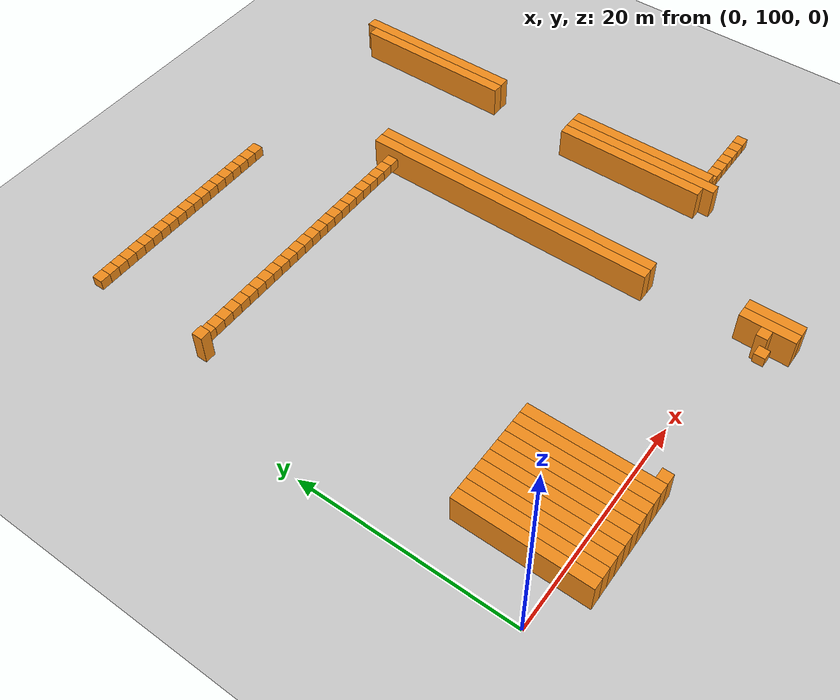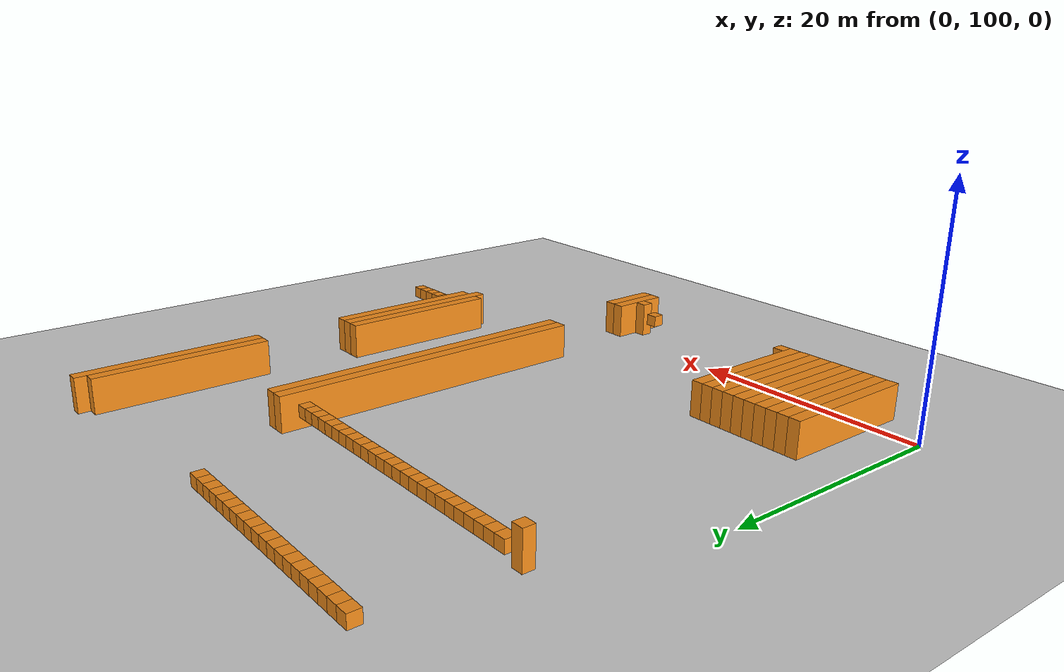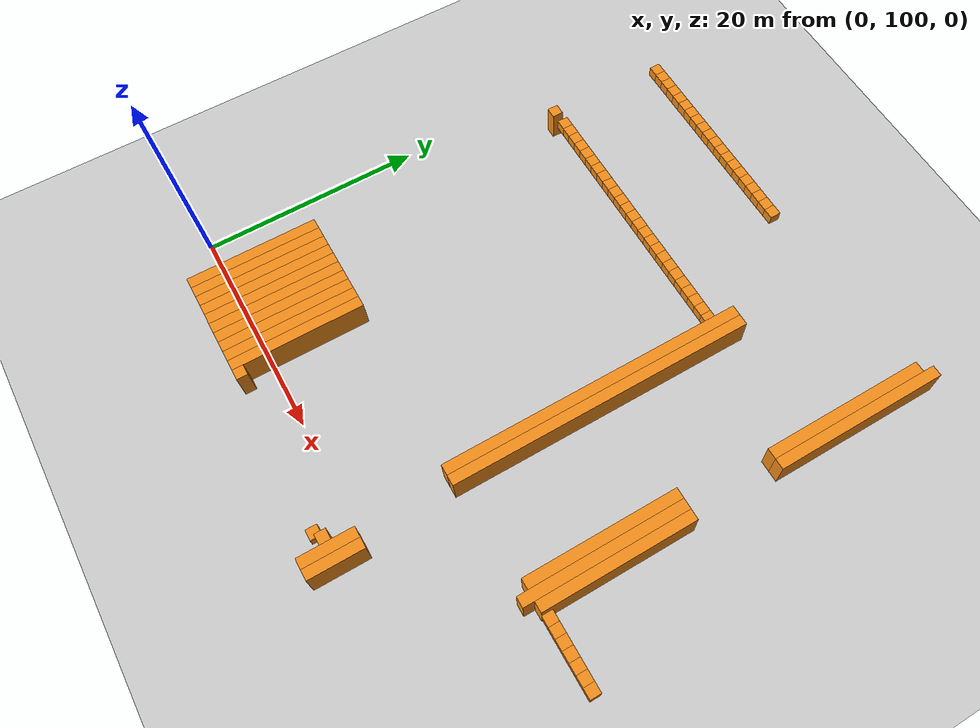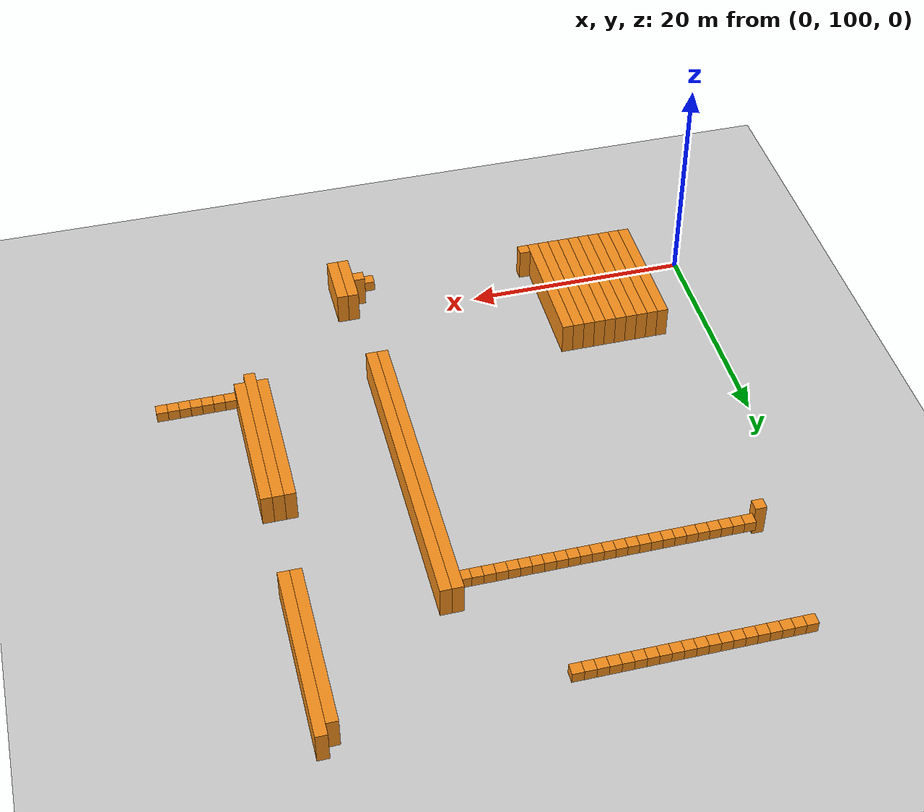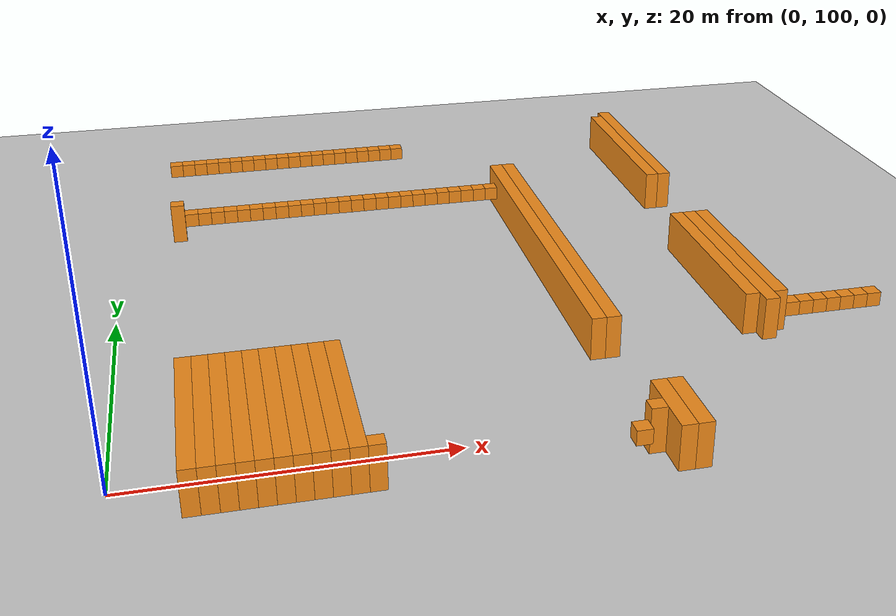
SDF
<sdf version="1.6">
 <world name="default">
  <include><uri>model://ground_plane</uri></include>
  <model name="unit_box_010">
   <pose>4.50   103.00     1.50 0 0 0</pose>
   <static>1</static>
   <link name="link">
    <inertial>
     <mass>5000</mass>
     <inertia><ixx>200</ixx><ixy>0</ixy><ixz>0</ixz><iyy>200</iyy><iyz>0</iyz><izz>200</izz></inertia>
    </inertial>
    <collision name="collision"><geometry><box><size>1 12 3</size></box></geometry></collision>
    <visual name="visual">
     <geometry><box><size>1 12 3</size></box></geometry>
     <material>
      <script><name>Gazebo/Orange</name><uri>file://media/materials/scripts/gazebo.material</uri></script>
     </material>
    </visual>
   </link>
  </model>
  <model name="unit_box_011">
   <pose>4.50   133.50     1.50 0 0 0</pose>
   <static>1</static>
   <link name="link">
    <inertial>
     <mass>5000</mass>
     <inertia><ixx>200</ixx><ixy>0</ixy><ixz>0</ixz><iyy>200</iyy><iyz>0</iyz><izz>200</izz></inertia>
    </inertial>
    <collision name="collision"><geometry><box><size>1 1 3</size></box></geometry></collision>
    <visual name="visual">
     <geometry><box><size>1 1 3</size></box></geometry>
     <material>
      <script><name>Gazebo/Orange</name><uri>file://media/materials/scripts/gazebo.material</uri></script>
     </material>
    </visual>
   </link>
  </model>
  <model name="unit_box_012">
   <pose>4.50   145.00     1.50 0 0 0</pose>
   <static>1</static>
   <link name="link">
    <inertial>
     <mass>5000</mass>
     <inertia><ixx>200</ixx><ixy>0</ixy><ixz>0</ixz><iyy>200</iyy><iyz>0</iyz><izz>200</izz></inertia>
    </inertial>
    <collision name="collision"><geometry><box><size>1 1 1</size></box></geometry></collision>
    <visual name="visual">
     <geometry><box><size>1 1 1</size></box></geometry>
     <material>
      <script><name>Gazebo/Orange</name><uri>file://media/materials/scripts/gazebo.material</uri></script>
     </material>
    </visual>
   </link>
  </model>
  <model name="unit_box_023">
   <pose>5.50   103.00     1.50 0 0 0</pose>
   <static>1</static>
   <link name="link">
    <inertial>
     <mass>5000</mass>
     <inertia><ixx>200</ixx><ixy>0</ixy><ixz>0</ixz><iyy>200</iyy><iyz>0</iyz><izz>200</izz></inertia>
    </inertial>
    <collision name="collision"><geometry><box><size>1 12 3</size></box></geometry></collision>
    <visual name="visual">
     <geometry><box><size>1 12 3</size></box></geometry>
     <material>
      <script><name>Gazebo/Orange</name><uri>file://media/materials/scripts/gazebo.material</uri></script>
     </material>
    </visual>
   </link>
  </model>
  <model name="unit_box_024">
   <pose>5.50   134.00     1.50 0 0 0</pose>
   <static>1</static>
   <link name="link">
    <inertial>
     <mass>5000</mass>
     <inertia><ixx>200</ixx><ixy>0</ixy><ixz>0</ixz><iyy>200</iyy><iyz>0</iyz><izz>200</izz></inertia>
    </inertial>
    <collision name="collision"><geometry><box><size>1 1 1</size></box></geometry></collision>
    <visual name="visual">
     <geometry><box><size>1 1 1</size></box></geometry>
     <material>
      <script><name>Gazebo/Orange</name><uri>file://media/materials/scripts/gazebo.material</uri></script>
     </material>
    </visual>
   </link>
  </model>
  <model name="unit_box_025">
   <pose>5.50   145.00     1.50 0 0 0</pose>
   <static>1</static>
   <link name="link">
    <inertial>
     <mass>5000</mass>
     <inertia><ixx>200</ixx><ixy>0</ixy><ixz>0</ixz><iyy>200</iyy><iyz>0</iyz><izz>200</izz></inertia>
    </inertial>
    <collision name="collision"><geometry><box><size>1 1 1</size></box></geometry></collision>
    <visual name="visual">
     <geometry><box><size>1 1 1</size></box></geometry>
     <material>
      <script><name>Gazebo/Orange</name><uri>file://media/materials/scripts/gazebo.material</uri></script>
     </material>
    </visual>
   </link>
  </model>
  <model name="unit_box_036">
   <pose>6.50   103.00     1.50 0 0 0</pose>
   <static>1</static>
   <link name="link">
    <inertial>
     <mass>5000</mass>
     <inertia><ixx>200</ixx><ixy>0</ixy><ixz>0</ixz><iyy>200</iyy><iyz>0</iyz><izz>200</izz></inertia>
    </inertial>
    <collision name="collision"><geometry><box><size>1 12 3</size></box></geometry></collision>
    <visual name="visual">
     <geometry><box><size>1 12 3</size></box></geometry>
     <material>
      <script><name>Gazebo/Orange</name><uri>file://media/materials/scripts/gazebo.material</uri></script>
     </material>
    </visual>
   </link>
  </model>
  <model name="unit_box_037">
   <pose>6.50   134.00     1.50 0 0 0</pose>
   <static>1</static>
   <link name="link">
    <inertial>
     <mass>5000</mass>
     <inertia><ixx>200</ixx><ixy>0</ixy><ixz>0</ixz><iyy>200</iyy><iyz>0</iyz><izz>200</izz></inertia>
    </inertial>
    <collision name="collision"><geometry><box><size>1 1 1</size></box></geometry></collision>
    <visual name="visual">
     <geometry><box><size>1 1 1</size></box></geometry>
     <material>
      <script><name>Gazebo/Orange</name><uri>file://media/materials/scripts/gazebo.material</uri></script>
     </material>
    </visual>
   </link>
  </model>
  <model name="unit_box_038">
   <pose>6.50   145.00     1.50 0 0 0</pose>
   <static>1</static>
   <link name="link">
    <inertial>
     <mass>5000</mass>
     <inertia><ixx>200</ixx><ixy>0</ixy><ixz>0</ixz><iyy>200</iyy><iyz>0</iyz><izz>200</izz></inertia>
    </inertial>
    <collision name="collision"><geometry><box><size>1 1 1</size></box></geometry></collision>
    <visual name="visual">
     <geometry><box><size>1 1 1</size></box></geometry>
     <material>
      <script><name>Gazebo/Orange</name><uri>file://media/materials/scripts/gazebo.material</uri></script>
     </material>
    </visual>
   </link>
  </model>
  <model name="unit_box_049">
   <pose>7.50   103.00     1.50 0 0 0</pose>
   <static>1</static>
   <link name="link">
    <inertial>
     <mass>5000</mass>
     <inertia><ixx>200</ixx><ixy>0</ixy><ixz>0</ixz><iyy>200</iyy><iyz>0</iyz><izz>200</izz></inertia>
    </inertial>
    <collision name="collision"><geometry><box><size>1 12 3</size></box></geometry></collision>
    <visual name="visual">
     <geometry><box><size>1 12 3</size></box></geometry>
     <material>
      <script><name>Gazebo/Orange</name><uri>file://media/materials/scripts/gazebo.material</uri></script>
     </material>
    </visual>
   </link>
  </model>
  <model name="unit_box_050">
   <pose>7.50   134.00     1.50 0 0 0</pose>
   <static>1</static>
   <link name="link">
    <inertial>
     <mass>5000</mass>
     <inertia><ixx>200</ixx><ixy>0</ixy><ixz>0</ixz><iyy>200</iyy><iyz>0</iyz><izz>200</izz></inertia>
    </inertial>
    <collision name="collision"><geometry><box><size>1 1 1</size></box></geometry></collision>
    <visual name="visual">
     <geometry><box><size>1 1 1</size></box></geometry>
     <material>
      <script><name>Gazebo/Orange</name><uri>file://media/materials/scripts/gazebo.material</uri></script>
     </material>
    </visual>
   </link>
  </model>
  <model name="unit_box_051">
   <pose>7.50   145.00     1.50 0 0 0</pose>
   <static>1</static>
   <link name="link">
    <inertial>
     <mass>5000</mass>
     <inertia><ixx>200</ixx><ixy>0</ixy><ixz>0</ixz><iyy>200</iyy><iyz>0</iyz><izz>200</izz></inertia>
    </inertial>
    <collision name="collision"><geometry><box><size>1 1 1</size></box></geometry></collision>
    <visual name="visual">
     <geometry><box><size>1 1 1</size></box></geometry>
     <material>
      <script><name>Gazebo/Orange</name><uri>file://media/materials/scripts/gazebo.material</uri></script>
     </material>
    </visual>
   </link>
  </model>
  <model name="unit_box_062">
   <pose>8.50   103.00     1.50 0 0 0</pose>
   <static>1</static>
   <link name="link">
    <inertial>
     <mass>5000</mass>
     <inertia><ixx>200</ixx><ixy>0</ixy><ixz>0</ixz><iyy>200</iyy><iyz>0</iyz><izz>200</izz></inertia>
    </inertial>
    <collision name="collision"><geometry><box><size>1 12 3</size></box></geometry></collision>
    <visual name="visual">
     <geometry><box><size>1 12 3</size></box></geometry>
     <material>
      <script><name>Gazebo/Orange</name><uri>file://media/materials/scripts/gazebo.material</uri></script>
     </material>
    </visual>
   </link>
  </model>
  <model name="unit_box_063">
   <pose>8.50   134.00     1.50 0 0 0</pose>
   <static>1</static>
   <link name="link">
    <inertial>
     <mass>5000</mass>
     <inertia><ixx>200</ixx><ixy>0</ixy><ixz>0</ixz><iyy>200</iyy><iyz>0</iyz><izz>200</izz></inertia>
    </inertial>
    <collision name="collision"><geometry><box><size>1 1 1</size></box></geometry></collision>
    <visual name="visual">
     <geometry><box><size>1 1 1</size></box></geometry>
     <material>
      <script><name>Gazebo/Orange</name><uri>file://media/materials/scripts/gazebo.material</uri></script>
     </material>
    </visual>
   </link>
  </model>
  <model name="unit_box_064">
   <pose>8.50   145.00     1.50 0 0 0</pose>
   <static>1</static>
   <link name="link">
    <inertial>
     <mass>5000</mass>
     <inertia><ixx>200</ixx><ixy>0</ixy><ixz>0</ixz><iyy>200</iyy><iyz>0</iyz><izz>200</izz></inertia>
    </inertial>
    <collision name="collision"><geometry><box><size>1 1 1</size></box></geometry></collision>
    <visual name="visual">
     <geometry><box><size>1 1 1</size></box></geometry>
     <material>
      <script><name>Gazebo/Orange</name><uri>file://media/materials/scripts/gazebo.material</uri></script>
     </material>
    </visual>
   </link>
  </model>
  <model name="unit_box_075">
   <pose>9.50   103.00     1.50 0 0 0</pose>
   <static>1</static>
   <link name="link">
    <inertial>
     <mass>5000</mass>
     <inertia><ixx>200</ixx><ixy>0</ixy><ixz>0</ixz><iyy>200</iyy><iyz>0</iyz><izz>200</izz></inertia>
    </inertial>
    <collision name="collision"><geometry><box><size>1 12 3</size></box></geometry></collision>
    <visual name="visual">
     <geometry><box><size>1 12 3</size></box></geometry>
     <material>
      <script><name>Gazebo/Orange</name><uri>file://media/materials/scripts/gazebo.material</uri></script>
     </material>
    </visual>
   </link>
  </model>
  <model name="unit_box_076">
   <pose>9.50   134.00     1.50 0 0 0</pose>
   <static>1</static>
   <link name="link">
    <inertial>
     <mass>5000</mass>
     <inertia><ixx>200</ixx><ixy>0</ixy><ixz>0</ixz><iyy>200</iyy><iyz>0</iyz><izz>200</izz></inertia>
    </inertial>
    <collision name="collision"><geometry><box><size>1 1 1</size></box></geometry></collision>
    <visual name="visual">
     <geometry><box><size>1 1 1</size></box></geometry>
     <material>
      <script><name>Gazebo/Orange</name><uri>file://media/materials/scripts/gazebo.material</uri></script>
     </material>
    </visual>
   </link>
  </model>
  <model name="unit_box_077">
   <pose>9.50   145.00     1.50 0 0 0</pose>
   <static>1</static>
   <link name="link">
    <inertial>
     <mass>5000</mass>
     <inertia><ixx>200</ixx><ixy>0</ixy><ixz>0</ixz><iyy>200</iyy><iyz>0</iyz><izz>200</izz></inertia>
    </inertial>
    <collision name="collision"><geometry><box><size>1 1 1</size></box></geometry></collision>
    <visual name="visual">
     <geometry><box><size>1 1 1</size></box></geometry>
     <material>
      <script><name>Gazebo/Orange</name><uri>file://media/materials/scripts/gazebo.material</uri></script>
     </material>
    </visual>
   </link>
  </model>
  <model name="unit_box_088">
   <pose>10.50   103.00     1.50 0 0 0</pose>
   <static>1</static>
   <link name="link">
    <inertial>
     <mass>5000</mass>
     <inertia><ixx>200</ixx><ixy>0</ixy><ixz>0</ixz><iyy>200</iyy><iyz>0</iyz><izz>200</izz></inertia>
    </inertial>
    <collision name="collision"><geometry><box><size>1 12 3</size></box></geometry></collision>
    <visual name="visual">
     <geometry><box><size>1 12 3</size></box></geometry>
     <material>
      <script><name>Gazebo/Orange</name><uri>file://media/materials/scripts/gazebo.material</uri></script>
     </material>
    </visual>
   </link>
  </model>
  <model name="unit_box_089">
   <pose>10.50   134.00     1.50 0 0 0</pose>
   <static>1</static>
   <link name="link">
    <inertial>
     <mass>5000</mass>
     <inertia><ixx>200</ixx><ixy>0</ixy><ixz>0</ixz><iyy>200</iyy><iyz>0</iyz><izz>200</izz></inertia>
    </inertial>
    <collision name="collision"><geometry><box><size>1 1 1</size></box></geometry></collision>
    <visual name="visual">
     <geometry><box><size>1 1 1</size></box></geometry>
     <material>
      <script><name>Gazebo/Orange</name><uri>file://media/materials/scripts/gazebo.material</uri></script>
     </material>
    </visual>
   </link>
  </model>
  <model name="unit_box_090">
   <pose>10.50   145.00     1.50 0 0 0</pose>
   <static>1</static>
   <link name="link">
    <inertial>
     <mass>5000</mass>
     <inertia><ixx>200</ixx><ixy>0</ixy><ixz>0</ixz><iyy>200</iyy><iyz>0</iyz><izz>200</izz></inertia>
    </inertial>
    <collision name="collision"><geometry><box><size>1 1 1</size></box></geometry></collision>
    <visual name="visual">
     <geometry><box><size>1 1 1</size></box></geometry>
     <material>
      <script><name>Gazebo/Orange</name><uri>file://media/materials/scripts/gazebo.material</uri></script>
     </material>
    </visual>
   </link>
  </model>
  <model name="unit_box_101">
   <pose>11.50   103.00     1.50 0 0 0</pose>
   <static>1</static>
   <link name="link">
    <inertial>
     <mass>5000</mass>
     <inertia><ixx>200</ixx><ixy>0</ixy><ixz>0</ixz><iyy>200</iyy><iyz>0</iyz><izz>200</izz></inertia>
    </inertial>
    <collision name="collision"><geometry><box><size>1 12 3</size></box></geometry></collision>
    <visual name="visual">
     <geometry><box><size>1 12 3</size></box></geometry>
     <material>
      <script><name>Gazebo/Orange</name><uri>file://media/materials/scripts/gazebo.material</uri></script>
     </material>
    </visual>
   </link>
  </model>
  <model name="unit_box_102">
   <pose>11.50   134.00     1.50 0 0 0</pose>
   <static>1</static>
   <link name="link">
    <inertial>
     <mass>5000</mass>
     <inertia><ixx>200</ixx><ixy>0</ixy><ixz>0</ixz><iyy>200</iyy><iyz>0</iyz><izz>200</izz></inertia>
    </inertial>
    <collision name="collision"><geometry><box><size>1 1 1</size></box></geometry></collision>
    <visual name="visual">
     <geometry><box><size>1 1 1</size></box></geometry>
     <material>
      <script><name>Gazebo/Orange</name><uri>file://media/materials/scripts/gazebo.material</uri></script>
     </material>
    </visual>
   </link>
  </model>
  <model name="unit_box_103">
   <pose>11.50   145.00     1.50 0 0 0</pose>
   <static>1</static>
   <link name="link">
    <inertial>
     <mass>5000</mass>
     <inertia><ixx>200</ixx><ixy>0</ixy><ixz>0</ixz><iyy>200</iyy><iyz>0</iyz><izz>200</izz></inertia>
    </inertial>
    <collision name="collision"><geometry><box><size>1 1 1</size></box></geometry></collision>
    <visual name="visual">
     <geometry><box><size>1 1 1</size></box></geometry>
     <material>
      <script><name>Gazebo/Orange</name><uri>file://media/materials/scripts/gazebo.material</uri></script>
     </material>
    </visual>
   </link>
  </model>
  <model name="unit_box_114">
   <pose>12.50   103.00     1.50 0 0 0</pose>
   <static>1</static>
   <link name="link">
    <inertial>
     <mass>5000</mass>
     <inertia><ixx>200</ixx><ixy>0</ixy><ixz>0</ixz><iyy>200</iyy><iyz>0</iyz><izz>200</izz></inertia>
    </inertial>
    <collision name="collision"><geometry><box><size>1 12 3</size></box></geometry></collision>
    <visual name="visual">
     <geometry><box><size>1 12 3</size></box></geometry>
     <material>
      <script><name>Gazebo/Orange</name><uri>file://media/materials/scripts/gazebo.material</uri></script>
     </material>
    </visual>
   </link>
  </model>
  <model name="unit_box_115">
   <pose>12.50   134.00     1.50 0 0 0</pose>
   <static>1</static>
   <link name="link">
    <inertial>
     <mass>5000</mass>
     <inertia><ixx>200</ixx><ixy>0</ixy><ixz>0</ixz><iyy>200</iyy><iyz>0</iyz><izz>200</izz></inertia>
    </inertial>
    <collision name="collision"><geometry><box><size>1 1 1</size></box></geometry></collision>
    <visual name="visual">
     <geometry><box><size>1 1 1</size></box></geometry>
     <material>
      <script><name>Gazebo/Orange</name><uri>file://media/materials/scripts/gazebo.material</uri></script>
     </material>
    </visual>
   </link>
  </model>
  <model name="unit_box_116">
   <pose>12.50   145.00     1.50 0 0 0</pose>
   <static>1</static>
   <link name="link">
    <inertial>
     <mass>5000</mass>
     <inertia><ixx>200</ixx><ixy>0</ixy><ixz>0</ixz><iyy>200</iyy><iyz>0</iyz><izz>200</izz></inertia>
    </inertial>
    <collision name="collision"><geometry><box><size>1 1 1</size></box></geometry></collision>
    <visual name="visual">
     <geometry><box><size>1 1 1</size></box></geometry>
     <material>
      <script><name>Gazebo/Orange</name><uri>file://media/materials/scripts/gazebo.material</uri></script>
     </material>
    </visual>
   </link>
  </model>
  <model name="unit_box_127">
   <pose>13.50   103.00     1.50 0 0 0</pose>
   <static>1</static>
   <link name="link">
    <inertial>
     <mass>5000</mass>
     <inertia><ixx>200</ixx><ixy>0</ixy><ixz>0</ixz><iyy>200</iyy><iyz>0</iyz><izz>200</izz></inertia>
    </inertial>
    <collision name="collision"><geometry><box><size>1 12 3</size></box></geometry></collision>
    <visual name="visual">
     <geometry><box><size>1 12 3</size></box></geometry>
     <material>
      <script><name>Gazebo/Orange</name><uri>file://media/materials/scripts/gazebo.material</uri></script>
     </material>
    </visual>
   </link>
  </model>
  <model name="unit_box_128">
   <pose>13.50   134.00     1.50 0 0 0</pose>
   <static>1</static>
   <link name="link">
    <inertial>
     <mass>5000</mass>
     <inertia><ixx>200</ixx><ixy>0</ixy><ixz>0</ixz><iyy>200</iyy><iyz>0</iyz><izz>200</izz></inertia>
    </inertial>
    <collision name="collision"><geometry><box><size>1 1 1</size></box></geometry></collision>
    <visual name="visual">
     <geometry><box><size>1 1 1</size></box></geometry>
     <material>
      <script><name>Gazebo/Orange</name><uri>file://media/materials/scripts/gazebo.material</uri></script>
     </material>
    </visual>
   </link>
  </model>
  <model name="unit_box_129">
   <pose>13.50   145.00     1.50 0 0 0</pose>
   <static>1</static>
   <link name="link">
    <inertial>
     <mass>5000</mass>
     <inertia><ixx>200</ixx><ixy>0</ixy><ixz>0</ixz><iyy>200</iyy><iyz>0</iyz><izz>200</izz></inertia>
    </inertial>
    <collision name="collision"><geometry><box><size>1 1 1</size></box></geometry></collision>
    <visual name="visual">
     <geometry><box><size>1 1 1</size></box></geometry>
     <material>
      <script><name>Gazebo/Orange</name><uri>file://media/materials/scripts/gazebo.material</uri></script>
     </material>
    </visual>
   </link>
  </model>
  <model name="unit_box_140">
   <pose>14.50    97.50     1.50 0 0 0</pose>
   <static>1</static>
   <link name="link">
    <inertial>
     <mass>5000</mass>
     <inertia><ixx>200</ixx><ixy>0</ixy><ixz>0</ixz><iyy>200</iyy><iyz>0</iyz><izz>200</izz></inertia>
    </inertial>
    <collision name="collision"><geometry><box><size>1 1 3</size></box></geometry></collision>
    <visual name="visual">
     <geometry><box><size>1 1 3</size></box></geometry>
     <material>
      <script><name>Gazebo/Orange</name><uri>file://media/materials/scripts/gazebo.material</uri></script>
     </material>
    </visual>
   </link>
  </model>
  <model name="unit_box_141">
   <pose>14.50   134.00     1.50 0 0 0</pose>
   <static>1</static>
   <link name="link">
    <inertial>
     <mass>5000</mass>
     <inertia><ixx>200</ixx><ixy>0</ixy><ixz>0</ixz><iyy>200</iyy><iyz>0</iyz><izz>200</izz></inertia>
    </inertial>
    <collision name="collision"><geometry><box><size>1 1 1</size></box></geometry></collision>
    <visual name="visual">
     <geometry><box><size>1 1 1</size></box></geometry>
     <material>
      <script><name>Gazebo/Orange</name><uri>file://media/materials/scripts/gazebo.material</uri></script>
     </material>
    </visual>
   </link>
  </model>
  <model name="unit_box_142">
   <pose>14.50   145.00     1.50 0 0 0</pose>
   <static>1</static>
   <link name="link">
    <inertial>
     <mass>5000</mass>
     <inertia><ixx>200</ixx><ixy>0</ixy><ixz>0</ixz><iyy>200</iyy><iyz>0</iyz><izz>200</izz></inertia>
    </inertial>
    <collision name="collision"><geometry><box><size>1 1 1</size></box></geometry></collision>
    <visual name="visual">
     <geometry><box><size>1 1 1</size></box></geometry>
     <material>
      <script><name>Gazebo/Orange</name><uri>file://media/materials/scripts/gazebo.material</uri></script>
     </material>
    </visual>
   </link>
  </model>
  <model name="unit_box_154">
   <pose>15.50   134.00     1.50 0 0 0</pose>
   <static>1</static>
   <link name="link">
    <inertial>
     <mass>5000</mass>
     <inertia><ixx>200</ixx><ixy>0</ixy><ixz>0</ixz><iyy>200</iyy><iyz>0</iyz><izz>200</izz></inertia>
    </inertial>
    <collision name="collision"><geometry><box><size>1 1 1</size></box></geometry></collision>
    <visual name="visual">
     <geometry><box><size>1 1 1</size></box></geometry>
     <material>
      <script><name>Gazebo/Orange</name><uri>file://media/materials/scripts/gazebo.material</uri></script>
     </material>
    </visual>
   </link>
  </model>
  <model name="unit_box_155">
   <pose>15.50   145.00     1.50 0 0 0</pose>
   <static>1</static>
   <link name="link">
    <inertial>
     <mass>5000</mass>
     <inertia><ixx>200</ixx><ixy>0</ixy><ixz>0</ixz><iyy>200</iyy><iyz>0</iyz><izz>200</izz></inertia>
    </inertial>
    <collision name="collision"><geometry><box><size>1 1 1</size></box></geometry></collision>
    <visual name="visual">
     <geometry><box><size>1 1 1</size></box></geometry>
     <material>
      <script><name>Gazebo/Orange</name><uri>file://media/materials/scripts/gazebo.material</uri></script>
     </material>
    </visual>
   </link>
  </model>
  <model name="unit_box_167">
   <pose>16.50   134.00     1.50 0 0 0</pose>
   <static>1</static>
   <link name="link">
    <inertial>
     <mass>5000</mass>
     <inertia><ixx>200</ixx><ixy>0</ixy><ixz>0</ixz><iyy>200</iyy><iyz>0</iyz><izz>200</izz></inertia>
    </inertial>
    <collision name="collision"><geometry><box><size>1 1 1</size></box></geometry></collision>
    <visual name="visual">
     <geometry><box><size>1 1 1</size></box></geometry>
     <material>
      <script><name>Gazebo/Orange</name><uri>file://media/materials/scripts/gazebo.material</uri></script>
     </material>
    </visual>
   </link>
  </model>
  <model name="unit_box_168">
   <pose>16.50   145.00     1.50 0 0 0</pose>
   <static>1</static>
   <link name="link">
    <inertial>
     <mass>5000</mass>
     <inertia><ixx>200</ixx><ixy>0</ixy><ixz>0</ixz><iyy>200</iyy><iyz>0</iyz><izz>200</izz></inertia>
    </inertial>
    <collision name="collision"><geometry><box><size>1 1 1</size></box></geometry></collision>
    <visual name="visual">
     <geometry><box><size>1 1 1</size></box></geometry>
     <material>
      <script><name>Gazebo/Orange</name><uri>file://media/materials/scripts/gazebo.material</uri></script>
     </material>
    </visual>
   </link>
  </model>
  <model name="unit_box_180">
   <pose>17.50   134.00     1.50 0 0 0</pose>
   <static>1</static>
   <link name="link">
    <inertial>
     <mass>5000</mass>
     <inertia><ixx>200</ixx><ixy>0</ixy><ixz>0</ixz><iyy>200</iyy><iyz>0</iyz><izz>200</izz></inertia>
    </inertial>
    <collision name="collision"><geometry><box><size>1 1 1</size></box></geometry></collision>
    <visual name="visual">
     <geometry><box><size>1 1 1</size></box></geometry>
     <material>
      <script><name>Gazebo/Orange</name><uri>file://media/materials/scripts/gazebo.material</uri></script>
     </material>
    </visual>
   </link>
  </model>
  <model name="unit_box_181">
   <pose>17.50   145.00     1.50 0 0 0</pose>
   <static>1</static>
   <link name="link">
    <inertial>
     <mass>5000</mass>
     <inertia><ixx>200</ixx><ixy>0</ixy><ixz>0</ixz><iyy>200</iyy><iyz>0</iyz><izz>200</izz></inertia>
    </inertial>
    <collision name="collision"><geometry><box><size>1 1 1</size></box></geometry></collision>
    <visual name="visual">
     <geometry><box><size>1 1 1</size></box></geometry>
     <material>
      <script><name>Gazebo/Orange</name><uri>file://media/materials/scripts/gazebo.material</uri></script>
     </material>
    </visual>
   </link>
  </model>
  <model name="unit_box_193">
   <pose>18.50   134.00     1.50 0 0 0</pose>
   <static>1</static>
   <link name="link">
    <inertial>
     <mass>5000</mass>
     <inertia><ixx>200</ixx><ixy>0</ixy><ixz>0</ixz><iyy>200</iyy><iyz>0</iyz><izz>200</izz></inertia>
    </inertial>
    <collision name="collision"><geometry><box><size>1 1 1</size></box></geometry></collision>
    <visual name="visual">
     <geometry><box><size>1 1 1</size></box></geometry>
     <material>
      <script><name>Gazebo/Orange</name><uri>file://media/materials/scripts/gazebo.material</uri></script>
     </material>
    </visual>
   </link>
  </model>
  <model name="unit_box_194">
   <pose>18.50   145.00     1.50 0 0 0</pose>
   <static>1</static>
   <link name="link">
    <inertial>
     <mass>5000</mass>
     <inertia><ixx>200</ixx><ixy>0</ixy><ixz>0</ixz><iyy>200</iyy><iyz>0</iyz><izz>200</izz></inertia>
    </inertial>
    <collision name="collision"><geometry><box><size>1 1 1</size></box></geometry></collision>
    <visual name="visual">
     <geometry><box><size>1 1 1</size></box></geometry>
     <material>
      <script><name>Gazebo/Orange</name><uri>file://media/materials/scripts/gazebo.material</uri></script>
     </material>
    </visual>
   </link>
  </model>
  <model name="unit_box_206">
   <pose>19.50   134.00     1.50 0 0 0</pose>
   <static>1</static>
   <link name="link">
    <inertial>
     <mass>5000</mass>
     <inertia><ixx>200</ixx><ixy>0</ixy><ixz>0</ixz><iyy>200</iyy><iyz>0</iyz><izz>200</izz></inertia>
    </inertial>
    <collision name="collision"><geometry><box><size>1 1 1</size></box></geometry></collision>
    <visual name="visual">
     <geometry><box><size>1 1 1</size></box></geometry>
     <material>
      <script><name>Gazebo/Orange</name><uri>file://media/materials/scripts/gazebo.material</uri></script>
     </material>
    </visual>
   </link>
  </model>
  <model name="unit_box_207">
   <pose>19.50   145.00     1.50 0 0 0</pose>
   <static>1</static>
   <link name="link">
    <inertial>
     <mass>5000</mass>
     <inertia><ixx>200</ixx><ixy>0</ixy><ixz>0</ixz><iyy>200</iyy><iyz>0</iyz><izz>200</izz></inertia>
    </inertial>
    <collision name="collision"><geometry><box><size>1 1 1</size></box></geometry></collision>
    <visual name="visual">
     <geometry><box><size>1 1 1</size></box></geometry>
     <material>
      <script><name>Gazebo/Orange</name><uri>file://media/materials/scripts/gazebo.material</uri></script>
     </material>
    </visual>
   </link>
  </model>
  <model name="unit_box_219">
   <pose>20.50   134.00     1.50 0 0 0</pose>
   <static>1</static>
   <link name="link">
    <inertial>
     <mass>5000</mass>
     <inertia><ixx>200</ixx><ixy>0</ixy><ixz>0</ixz><iyy>200</iyy><iyz>0</iyz><izz>200</izz></inertia>
    </inertial>
    <collision name="collision"><geometry><box><size>1 1 1</size></box></geometry></collision>
    <visual name="visual">
     <geometry><box><size>1 1 1</size></box></geometry>
     <material>
      <script><name>Gazebo/Orange</name><uri>file://media/materials/scripts/gazebo.material</uri></script>
     </material>
    </visual>
   </link>
  </model>
  <model name="unit_box_220">
   <pose>20.50   145.00     1.50 0 0 0</pose>
   <static>1</static>
   <link name="link">
    <inertial>
     <mass>5000</mass>
     <inertia><ixx>200</ixx><ixy>0</ixy><ixz>0</ixz><iyy>200</iyy><iyz>0</iyz><izz>200</izz></inertia>
    </inertial>
    <collision name="collision"><geometry><box><size>1 1 1</size></box></geometry></collision>
    <visual name="visual">
     <geometry><box><size>1 1 1</size></box></geometry>
     <material>
      <script><name>Gazebo/Orange</name><uri>file://media/materials/scripts/gazebo.material</uri></script>
     </material>
    </visual>
   </link>
  </model>
  <model name="unit_box_232">
   <pose>21.50   134.00     1.50 0 0 0</pose>
   <static>1</static>
   <link name="link">
    <inertial>
     <mass>5000</mass>
     <inertia><ixx>200</ixx><ixy>0</ixy><ixz>0</ixz><iyy>200</iyy><iyz>0</iyz><izz>200</izz></inertia>
    </inertial>
    <collision name="collision"><geometry><box><size>1 1 1</size></box></geometry></collision>
    <visual name="visual">
     <geometry><box><size>1 1 1</size></box></geometry>
     <material>
      <script><name>Gazebo/Orange</name><uri>file://media/materials/scripts/gazebo.material</uri></script>
     </material>
    </visual>
   </link>
  </model>
  <model name="unit_box_233">
   <pose>21.50   145.00     1.50 0 0 0</pose>
   <static>1</static>
   <link name="link">
    <inertial>
     <mass>5000</mass>
     <inertia><ixx>200</ixx><ixy>0</ixy><ixz>0</ixz><iyy>200</iyy><iyz>0</iyz><izz>200</izz></inertia>
    </inertial>
    <collision name="collision"><geometry><box><size>1 1 1</size></box></geometry></collision>
    <visual name="visual">
     <geometry><box><size>1 1 1</size></box></geometry>
     <material>
      <script><name>Gazebo/Orange</name><uri>file://media/materials/scripts/gazebo.material</uri></script>
     </material>
    </visual>
   </link>
  </model>
  <model name="unit_box_245">
   <pose>22.50   134.00     1.50 0 0 0</pose>
   <static>1</static>
   <link name="link">
    <inertial>
     <mass>5000</mass>
     <inertia><ixx>200</ixx><ixy>0</ixy><ixz>0</ixz><iyy>200</iyy><iyz>0</iyz><izz>200</izz></inertia>
    </inertial>
    <collision name="collision"><geometry><box><size>1 1 1</size></box></geometry></collision>
    <visual name="visual">
     <geometry><box><size>1 1 1</size></box></geometry>
     <material>
      <script><name>Gazebo/Orange</name><uri>file://media/materials/scripts/gazebo.material</uri></script>
     </material>
    </visual>
   </link>
  </model>
  <model name="unit_box_246">
   <pose>22.50   145.00     1.50 0 0 0</pose>
   <static>1</static>
   <link name="link">
    <inertial>
     <mass>5000</mass>
     <inertia><ixx>200</ixx><ixy>0</ixy><ixz>0</ixz><iyy>200</iyy><iyz>0</iyz><izz>200</izz></inertia>
    </inertial>
    <collision name="collision"><geometry><box><size>1 1 1</size></box></geometry></collision>
    <visual name="visual">
     <geometry><box><size>1 1 1</size></box></geometry>
     <material>
      <script><name>Gazebo/Orange</name><uri>file://media/materials/scripts/gazebo.material</uri></script>
     </material>
    </visual>
   </link>
  </model>
  <model name="unit_box_258">
   <pose>23.50   134.00     1.50 0 0 0</pose>
   <static>1</static>
   <link name="link">
    <inertial>
     <mass>5000</mass>
     <inertia><ixx>200</ixx><ixy>0</ixy><ixz>0</ixz><iyy>200</iyy><iyz>0</iyz><izz>200</izz></inertia>
    </inertial>
    <collision name="collision"><geometry><box><size>1 1 1</size></box></geometry></collision>
    <visual name="visual">
     <geometry><box><size>1 1 1</size></box></geometry>
     <material>
      <script><name>Gazebo/Orange</name><uri>file://media/materials/scripts/gazebo.material</uri></script>
     </material>
    </visual>
   </link>
  </model>
  <model name="unit_box_259">
   <pose>23.50   145.00     1.50 0 0 0</pose>
   <static>1</static>
   <link name="link">
    <inertial>
     <mass>5000</mass>
     <inertia><ixx>200</ixx><ixy>0</ixy><ixz>0</ixz><iyy>200</iyy><iyz>0</iyz><izz>200</izz></inertia>
    </inertial>
    <collision name="collision"><geometry><box><size>1 1 1</size></box></geometry></collision>
    <visual name="visual">
     <geometry><box><size>1 1 1</size></box></geometry>
     <material>
      <script><name>Gazebo/Orange</name><uri>file://media/materials/scripts/gazebo.material</uri></script>
     </material>
    </visual>
   </link>
  </model>
  <model name="unit_box_271">
   <pose>24.50   134.00     1.50 0 0 0</pose>
   <static>1</static>
   <link name="link">
    <inertial>
     <mass>5000</mass>
     <inertia><ixx>200</ixx><ixy>0</ixy><ixz>0</ixz><iyy>200</iyy><iyz>0</iyz><izz>200</izz></inertia>
    </inertial>
    <collision name="collision"><geometry><box><size>1 1 1</size></box></geometry></collision>
    <visual name="visual">
     <geometry><box><size>1 1 1</size></box></geometry>
     <material>
      <script><name>Gazebo/Orange</name><uri>file://media/materials/scripts/gazebo.material</uri></script>
     </material>
    </visual>
   </link>
  </model>
  <model name="unit_box_284">
   <pose>25.50   134.00     1.50 0 0 0</pose>
   <static>1</static>
   <link name="link">
    <inertial>
     <mass>5000</mass>
     <inertia><ixx>200</ixx><ixy>0</ixy><ixz>0</ixz><iyy>200</iyy><iyz>0</iyz><izz>200</izz></inertia>
    </inertial>
    <collision name="collision"><geometry><box><size>1 1 1</size></box></geometry></collision>
    <visual name="visual">
     <geometry><box><size>1 1 1</size></box></geometry>
     <material>
      <script><name>Gazebo/Orange</name><uri>file://media/materials/scripts/gazebo.material</uri></script>
     </material>
    </visual>
   </link>
  </model>
  <model name="unit_box_297">
   <pose>26.50   134.00     1.50 0 0 0</pose>
   <static>1</static>
   <link name="link">
    <inertial>
     <mass>5000</mass>
     <inertia><ixx>200</ixx><ixy>0</ixy><ixz>0</ixz><iyy>200</iyy><iyz>0</iyz><izz>200</izz></inertia>
    </inertial>
    <collision name="collision"><geometry><box><size>1 1 1</size></box></geometry></collision>
    <visual name="visual">
     <geometry><box><size>1 1 1</size></box></geometry>
     <material>
      <script><name>Gazebo/Orange</name><uri>file://media/materials/scripts/gazebo.material</uri></script>
     </material>
    </visual>
   </link>
  </model>
  <model name="unit_box_310">
   <pose>27.50   134.00     1.50 0 0 0</pose>
   <static>1</static>
   <link name="link">
    <inertial>
     <mass>5000</mass>
     <inertia><ixx>200</ixx><ixy>0</ixy><ixz>0</ixz><iyy>200</iyy><iyz>0</iyz><izz>200</izz></inertia>
    </inertial>
    <collision name="collision"><geometry><box><size>1 1 1</size></box></geometry></collision>
    <visual name="visual">
     <geometry><box><size>1 1 1</size></box></geometry>
     <material>
      <script><name>Gazebo/Orange</name><uri>file://media/materials/scripts/gazebo.material</uri></script>
     </material>
    </visual>
   </link>
  </model>
  <model name="unit_box_323">
   <pose>28.50   134.00     1.50 0 0 0</pose>
   <static>1</static>
   <link name="link">
    <inertial>
     <mass>5000</mass>
     <inertia><ixx>200</ixx><ixy>0</ixy><ixz>0</ixz><iyy>200</iyy><iyz>0</iyz><izz>200</izz></inertia>
    </inertial>
    <collision name="collision"><geometry><box><size>1 1 1</size></box></geometry></collision>
    <visual name="visual">
     <geometry><box><size>1 1 1</size></box></geometry>
     <material>
      <script><name>Gazebo/Orange</name><uri>file://media/materials/scripts/gazebo.material</uri></script>
     </material>
    </visual>
   </link>
  </model>
  <model name="unit_box_335">
   <pose>29.50    97.00     1.50 0 0 0</pose>
   <static>1</static>
   <link name="link">
    <inertial>
     <mass>5000</mass>
     <inertia><ixx>200</ixx><ixy>0</ixy><ixz>0</ixz><iyy>200</iyy><iyz>0</iyz><izz>200</izz></inertia>
    </inertial>
    <collision name="collision"><geometry><box><size>1 1 1</size></box></geometry></collision>
    <visual name="visual">
     <geometry><box><size>1 1 1</size></box></geometry>
     <material>
      <script><name>Gazebo/Orange</name><uri>file://media/materials/scripts/gazebo.material</uri></script>
     </material>
    </visual>
   </link>
  </model>
  <model name="unit_box_336">
   <pose>29.50   134.00     1.50 0 0 0</pose>
   <static>1</static>
   <link name="link">
    <inertial>
     <mass>5000</mass>
     <inertia><ixx>200</ixx><ixy>0</ixy><ixz>0</ixz><iyy>200</iyy><iyz>0</iyz><izz>200</izz></inertia>
    </inertial>
    <collision name="collision"><geometry><box><size>1 1 1</size></box></geometry></collision>
    <visual name="visual">
     <geometry><box><size>1 1 1</size></box></geometry>
     <material>
      <script><name>Gazebo/Orange</name><uri>file://media/materials/scripts/gazebo.material</uri></script>
     </material>
    </visual>
   </link>
  </model>
  <model name="unit_box_348">
   <pose>30.50    97.50     1.50 0 0 0</pose>
   <static>1</static>
   <link name="link">
    <inertial>
     <mass>5000</mass>
     <inertia><ixx>200</ixx><ixy>0</ixy><ixz>0</ixz><iyy>200</iyy><iyz>0</iyz><izz>200</izz></inertia>
    </inertial>
    <collision name="collision"><geometry><box><size>1 1 3</size></box></geometry></collision>
    <visual name="visual">
     <geometry><box><size>1 1 3</size></box></geometry>
     <material>
      <script><name>Gazebo/Orange</name><uri>file://media/materials/scripts/gazebo.material</uri></script>
     </material>
    </visual>
   </link>
  </model>
  <model name="unit_box_349">
   <pose>30.50   122.00     1.50 0 0 0</pose>
   <static>1</static>
   <link name="link">
    <inertial>
     <mass>5000</mass>
     <inertia><ixx>200</ixx><ixy>0</ixy><ixz>0</ixz><iyy>200</iyy><iyz>0</iyz><izz>200</izz></inertia>
    </inertial>
    <collision name="collision"><geometry><box><size>1 28 3</size></box></geometry></collision>
    <visual name="visual">
     <geometry><box><size>1 28 3</size></box></geometry>
     <material>
      <script><name>Gazebo/Orange</name><uri>file://media/materials/scripts/gazebo.material</uri></script>
     </material>
    </visual>
   </link>
  </model>
  <model name="unit_box_361">
   <pose>31.50    97.50     1.50 0 0 0</pose>
   <static>1</static>
   <link name="link">
    <inertial>
     <mass>5000</mass>
     <inertia><ixx>200</ixx><ixy>0</ixy><ixz>0</ixz><iyy>200</iyy><iyz>0</iyz><izz>200</izz></inertia>
    </inertial>
    <collision name="collision"><geometry><box><size>1 5 3</size></box></geometry></collision>
    <visual name="visual">
     <geometry><box><size>1 5 3</size></box></geometry>
     <material>
      <script><name>Gazebo/Orange</name><uri>file://media/materials/scripts/gazebo.material</uri></script>
     </material>
    </visual>
   </link>
  </model>
  <model name="unit_box_362">
   <pose>31.50   122.00     1.50 0 0 0</pose>
   <static>1</static>
   <link name="link">
    <inertial>
     <mass>5000</mass>
     <inertia><ixx>200</ixx><ixy>0</ixy><ixz>0</ixz><iyy>200</iyy><iyz>0</iyz><izz>200</izz></inertia>
    </inertial>
    <collision name="collision"><geometry><box><size>1 28 3</size></box></geometry></collision>
    <visual name="visual">
     <geometry><box><size>1 28 3</size></box></geometry>
     <material>
      <script><name>Gazebo/Orange</name><uri>file://media/materials/scripts/gazebo.material</uri></script>
     </material>
    </visual>
   </link>
  </model>
  <model name="unit_box_376">
   <pose>32.50    97.50     1.50 0 0 0</pose>
   <static>1</static>
   <link name="link">
    <inertial>
     <mass>5000</mass>
     <inertia><ixx>200</ixx><ixy>0</ixy><ixz>0</ixz><iyy>200</iyy><iyz>0</iyz><izz>200</izz></inertia>
    </inertial>
    <collision name="collision"><geometry><box><size>1 5 3</size></box></geometry></collision>
    <visual name="visual">
     <geometry><box><size>1 5 3</size></box></geometry>
     <material>
      <script><name>Gazebo/Orange</name><uri>file://media/materials/scripts/gazebo.material</uri></script>
     </material>
    </visual>
   </link>
  </model>
  <model name="unit_box_431">
   <pose>41.50   116.00     1.50 0 0 0</pose>
   <static>1</static>
   <link name="link">
    <inertial>
     <mass>5000</mass>
     <inertia><ixx>200</ixx><ixy>0</ixy><ixz>0</ixz><iyy>200</iyy><iyz>0</iyz><izz>200</izz></inertia>
    </inertial>
    <collision name="collision"><geometry><box><size>1 14 3</size></box></geometry></collision>
    <visual name="visual">
     <geometry><box><size>1 14 3</size></box></geometry>
     <material>
      <script><name>Gazebo/Orange</name><uri>file://media/materials/scripts/gazebo.material</uri></script>
     </material>
    </visual>
   </link>
  </model>
  <model name="unit_box_441">
   <pose>42.50   115.50     1.50 0 0 0</pose>
   <static>1</static>
   <link name="link">
    <inertial>
     <mass>5000</mass>
     <inertia><ixx>200</ixx><ixy>0</ixy><ixz>0</ixz><iyy>200</iyy><iyz>0</iyz><izz>200</izz></inertia>
    </inertial>
    <collision name="collision"><geometry><box><size>1 15 3</size></box></geometry></collision>
    <visual name="visual">
     <geometry><box><size>1 15 3</size></box></geometry>
     <material>
      <script><name>Gazebo/Orange</name><uri>file://media/materials/scripts/gazebo.material</uri></script>
     </material>
    </visual>
   </link>
  </model>
  <model name="unit_box_442">
   <pose>42.50   138.50     1.50 0 0 0</pose>
   <static>1</static>
   <link name="link">
    <inertial>
     <mass>5000</mass>
     <inertia><ixx>200</ixx><ixy>0</ixy><ixz>0</ixz><iyy>200</iyy><iyz>0</iyz><izz>200</izz></inertia>
    </inertial>
    <collision name="collision"><geometry><box><size>1 15 3</size></box></geometry></collision>
    <visual name="visual">
     <geometry><box><size>1 15 3</size></box></geometry>
     <material>
      <script><name>Gazebo/Orange</name><uri>file://media/materials/scripts/gazebo.material</uri></script>
     </material>
    </visual>
   </link>
  </model>
  <model name="unit_box_455">
   <pose>43.50   116.00     1.50 0 0 0</pose>
   <static>1</static>
   <link name="link">
    <inertial>
     <mass>5000</mass>
     <inertia><ixx>200</ixx><ixy>0</ixy><ixz>0</ixz><iyy>200</iyy><iyz>0</iyz><izz>200</izz></inertia>
    </inertial>
    <collision name="collision"><geometry><box><size>1 14 3</size></box></geometry></collision>
    <visual name="visual">
     <geometry><box><size>1 14 3</size></box></geometry>
     <material>
      <script><name>Gazebo/Orange</name><uri>file://media/materials/scripts/gazebo.material</uri></script>
     </material>
    </visual>
   </link>
  </model>
  <model name="unit_box_456">
   <pose>43.50   139.00     1.50 0 0 0</pose>
   <static>1</static>
   <link name="link">
    <inertial>
     <mass>5000</mass>
     <inertia><ixx>200</ixx><ixy>0</ixy><ixz>0</ixz><iyy>200</iyy><iyz>0</iyz><izz>200</izz></inertia>
    </inertial>
    <collision name="collision"><geometry><box><size>1 16 3</size></box></geometry></collision>
    <visual name="visual">
     <geometry><box><size>1 16 3</size></box></geometry>
     <material>
      <script><name>Gazebo/Orange</name><uri>file://media/materials/scripts/gazebo.material</uri></script>
     </material>
    </visual>
   </link>
  </model>
  <model name="unit_box_470">
   <pose>44.50   109.50     1.50 0 0 0</pose>
   <static>1</static>
   <link name="link">
    <inertial>
     <mass>5000</mass>
     <inertia><ixx>200</ixx><ixy>0</ixy><ixz>0</ixz><iyy>200</iyy><iyz>0</iyz><izz>200</izz></inertia>
    </inertial>
    <collision name="collision"><geometry><box><size>1 1 1</size></box></geometry></collision>
    <visual name="visual">
     <geometry><box><size>1 1 1</size></box></geometry>
     <material>
      <script><name>Gazebo/Orange</name><uri>file://media/materials/scripts/gazebo.material</uri></script>
     </material>
    </visual>
   </link>
  </model>
  <model name="unit_box_485">
   <pose>45.50   109.50     1.50 0 0 0</pose>
   <static>1</static>
   <link name="link">
    <inertial>
     <mass>5000</mass>
     <inertia><ixx>200</ixx><ixy>0</ixy><ixz>0</ixz><iyy>200</iyy><iyz>0</iyz><izz>200</izz></inertia>
    </inertial>
    <collision name="collision"><geometry><box><size>1 1 1</size></box></geometry></collision>
    <visual name="visual">
     <geometry><box><size>1 1 1</size></box></geometry>
     <material>
      <script><name>Gazebo/Orange</name><uri>file://media/materials/scripts/gazebo.material</uri></script>
     </material>
    </visual>
   </link>
  </model>
  <model name="unit_box_500">
   <pose>46.50   109.50     1.50 0 0 0</pose>
   <static>1</static>
   <link name="link">
    <inertial>
     <mass>5000</mass>
     <inertia><ixx>200</ixx><ixy>0</ixy><ixz>0</ixz><iyy>200</iyy><iyz>0</iyz><izz>200</izz></inertia>
    </inertial>
    <collision name="collision"><geometry><box><size>1 1 1</size></box></geometry></collision>
    <visual name="visual">
     <geometry><box><size>1 1 1</size></box></geometry>
     <material>
      <script><name>Gazebo/Orange</name><uri>file://media/materials/scripts/gazebo.material</uri></script>
     </material>
    </visual>
   </link>
  </model>
  <model name="unit_box_513">
   <pose>47.50   109.50     1.50 0 0 0</pose>
   <static>1</static>
   <link name="link">
    <inertial>
     <mass>5000</mass>
     <inertia><ixx>200</ixx><ixy>0</ixy><ixz>0</ixz><iyy>200</iyy><iyz>0</iyz><izz>200</izz></inertia>
    </inertial>
    <collision name="collision"><geometry><box><size>1 1 1</size></box></geometry></collision>
    <visual name="visual">
     <geometry><box><size>1 1 1</size></box></geometry>
     <material>
      <script><name>Gazebo/Orange</name><uri>file://media/materials/scripts/gazebo.material</uri></script>
     </material>
    </visual>
   </link>
  </model>
  <model name="unit_box_526">
   <pose>48.50   109.50     1.50 0 0 0</pose>
   <static>1</static>
   <link name="link">
    <inertial>
     <mass>5000</mass>
     <inertia><ixx>200</ixx><ixy>0</ixy><ixz>0</ixz><iyy>200</iyy><iyz>0</iyz><izz>200</izz></inertia>
    </inertial>
    <collision name="collision"><geometry><box><size>1 1 1</size></box></geometry></collision>
    <visual name="visual">
     <geometry><box><size>1 1 1</size></box></geometry>
     <material>
      <script><name>Gazebo/Orange</name><uri>file://media/materials/scripts/gazebo.material</uri></script>
     </material>
    </visual>
   </link>
  </model>
  <model name="unit_box_539">
   <pose>49.50   109.50     1.50 0 0 0</pose>
   <static>1</static>
   <link name="link">
    <inertial>
     <mass>5000</mass>
     <inertia><ixx>200</ixx><ixy>0</ixy><ixz>0</ixz><iyy>200</iyy><iyz>0</iyz><izz>200</izz></inertia>
    </inertial>
    <collision name="collision"><geometry><box><size>1 1 1</size></box></geometry></collision>
    <visual name="visual">
     <geometry><box><size>1 1 1</size></box></geometry>
     <material>
      <script><name>Gazebo/Orange</name><uri>file://media/materials/scripts/gazebo.material</uri></script>
     </material>
    </visual>
   </link>
  </model>
  <model name="unit_box_554">
   <pose>50.50   109.50     1.50 0 0 0</pose>
   <static>1</static>
   <link name="link">
    <inertial>
     <mass>5000</mass>
     <inertia><ixx>200</ixx><ixy>0</ixy><ixz>0</ixz><iyy>200</iyy><iyz>0</iyz><izz>200</izz></inertia>
    </inertial>
    <collision name="collision"><geometry><box><size>1 1 1</size></box></geometry></collision>
    <visual name="visual">
     <geometry><box><size>1 1 1</size></box></geometry>
     <material>
      <script><name>Gazebo/Orange</name><uri>file://media/materials/scripts/gazebo.material</uri></script>
     </material>
    </visual>
   </link>
  </model>
 </world>
</sdf>
